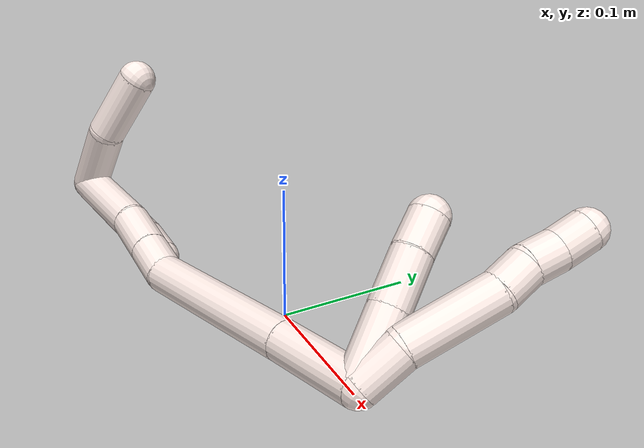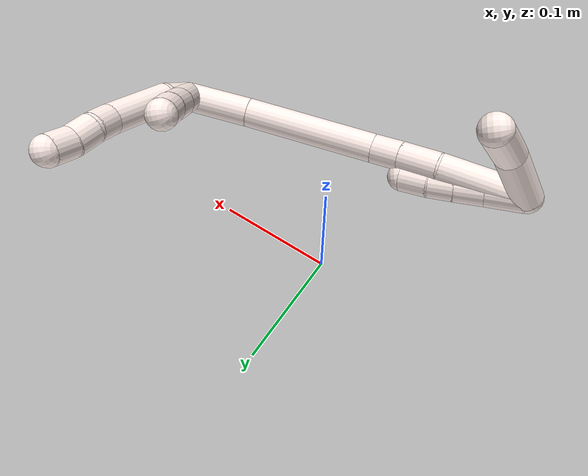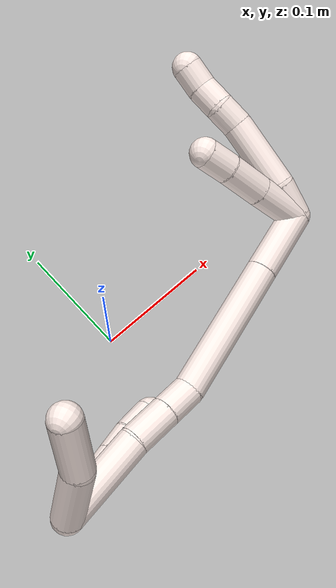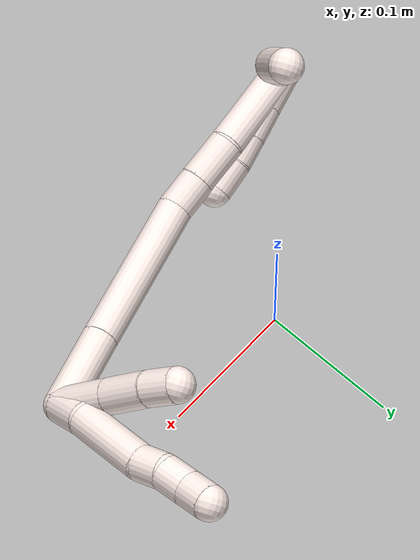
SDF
<sdf version="1.7">
 <world name="default">
  <model name="11">
   <static>0</static>
   <link name="11">
    <collision name="collision-cylinder-e_1_2_8">
     <pose>0.012217 0.007982 -0.002102 -1.8283 0.976625 -1.20693</pose>
     <geometry><cylinder><radius>0.0125</radius><length>0.029489</length></cylinder></geometry>
     <surface>
      <friction><ode><mu>1.16</mu><mu2>1.16</mu2><slip1>0</slip1><slip2>0</slip2></ode></friction>
      <contact><ode><kp>1e+06</kp><kd>1</kd><max_vel>0</max_vel><min_depth>0.001</min_depth></ode></contact>
     </surface>
    </collision>
    <visual name="visual-cylinder-e_1_2_8">
     <pose>0.012217 0.007982 -0.002102 -1.8283 0.976625 -1.20693</pose>
     <geometry><cylinder><radius>0.0125</radius><length>0.029489</length></cylinder></geometry>
     <material><ambient>1 0.933333 0.909804 1</ambient></material>
    </visual>
    <collision name="collision-cylinder-e_2_8_9">
     <pose>0.043602 0.036632 -0.012464 -1.95098 0.710941 -1.00284</pose>
     <geometry><cylinder><radius>0.0125</radius><length>0.058746</length></cylinder></geometry>
     <surface>
      <friction><ode><mu>1.16</mu><mu2>1.16</mu2><slip1>0</slip1><slip2>0</slip2></ode></friction>
      <contact><ode><kp>1e+06</kp><kd>1</kd><max_vel>0</max_vel><min_depth>0.001</min_depth></ode></contact>
     </surface>
    </collision>
    <visual name="visual-cylinder-e_2_8_9">
     <pose>0.043602 0.036632 -0.012464 -1.95098 0.710941 -1.00284</pose>
     <geometry><cylinder><radius>0.0125</radius><length>0.058746</length></cylinder></geometry>
     <material><ambient>1 0.933333 0.909804 1</ambient></material>
    </visual>
    <collision name="collision-cylinder-e_3_9_10">
     <pose>0.069662 0.065095 -0.021282 -1.6424 0.722767 -0.771447</pose>
     <geometry><cylinder><radius>0.0125</radius><length>0.02084</length></cylinder></geometry>
     <surface>
      <friction><ode><mu>1.16</mu><mu2>1.16</mu2><slip1>0</slip1><slip2>0</slip2></ode></friction>
      <contact><ode><kp>1e+06</kp><kd>1</kd><max_vel>0</max_vel><min_depth>0.001</min_depth></ode></contact>
     </surface>
    </collision>
    <visual name="visual-cylinder-e_3_9_10">
     <pose>0.069662 0.065095 -0.021282 -1.6424 0.722767 -0.771447</pose>
     <geometry><cylinder><radius>0.0125</radius><length>0.02084</length></cylinder></geometry>
     <material><ambient>1 0.933333 0.909804 1</ambient></material>
    </visual>
    <collision name="collision-cylinder-e_4_10_11">
     <pose>0.08186 0.081204 -0.024626 -1.894 0.544195 -0.739733</pose>
     <geometry><cylinder><radius>0.0125</radius><length>0.020497</length></cylinder></geometry>
     <surface>
      <friction><ode><mu>1.16</mu><mu2>1.16</mu2><slip1>0</slip1><slip2>0</slip2></ode></friction>
      <contact><ode><kp>1e+06</kp><kd>1</kd><max_vel>0</max_vel><min_depth>0.001</min_depth></ode></contact>
     </surface>
    </collision>
    <visual name="visual-cylinder-e_4_10_11">
     <pose>0.08186 0.081204 -0.024626 -1.894 0.544195 -0.739733</pose>
     <geometry><cylinder><radius>0.0125</radius><length>0.020497</length></cylinder></geometry>
     <material><ambient>1 0.933333 0.909804 1</ambient></material>
    </visual>
    <collision name="collision-cylinder-e_5_11_6">
     <pose>0.094189 0.096552 -0.02976 -1.89314 0.758158 -1.01032</pose>
     <geometry><cylinder><radius>0.0125</radius><length>0.020429</length></cylinder></geometry>
     <surface>
      <friction><ode><mu>1.16</mu><mu2>1.16</mu2><slip1>0</slip1><slip2>0</slip2></ode></friction>
      <contact><ode><kp>1e+06</kp><kd>1</kd><max_vel>0</max_vel><min_depth>0.001</min_depth></ode></contact>
     </surface>
    </collision>
    <visual name="visual-cylinder-e_5_11_6">
     <pose>0.094189 0.096552 -0.02976 -1.89314 0.758158 -1.01032</pose>
     <geometry><cylinder><radius>0.0125</radius><length>0.020429</length></cylinder></geometry>
     <material><ambient>1 0.933333 0.909804 1</ambient></material>
    </visual>
    <collision name="collision-cylinder-e_1_2_12">
     <pose>0.014552 0.013639 0.007471 -1.06966 0.752239 -0.459654</pose>
     <geometry><cylinder><radius>0.0125</radius><length>0.042596</length></cylinder></geometry>
     <surface>
      <friction><ode><mu>1.16</mu><mu2>1.16</mu2><slip1>0</slip1><slip2>0</slip2></ode></friction>
      <contact><ode><kp>1e+06</kp><kd>1</kd><max_vel>0</max_vel><min_depth>0.001</min_depth></ode></contact>
     </surface>
    </collision>
    <visual name="visual-cylinder-e_1_2_12">
     <pose>0.014552 0.013639 0.007471 -1.06966 0.752239 -0.459654</pose>
     <geometry><cylinder><radius>0.0125</radius><length>0.042596</length></cylinder></geometry>
     <material><ambient>1 0.933333 0.909804 1</ambient></material>
    </visual>
    <collision name="collision-cylinder-e_2_12_13">
     <pose>0.040967 0.037954 0.020758 -1.07203 0.773077 -0.47445</pose>
     <geometry><cylinder><radius>0.0125</radius><length>0.033972</length></cylinder></geometry>
     <surface>
      <friction><ode><mu>1.16</mu><mu2>1.16</mu2><slip1>0</slip1><slip2>0</slip2></ode></friction>
      <contact><ode><kp>1e+06</kp><kd>1</kd><max_vel>0</max_vel><min_depth>0.001</min_depth></ode></contact>
     </surface>
    </collision>
    <visual name="visual-cylinder-e_2_12_13">
     <pose>0.040967 0.037954 0.020758 -1.07203 0.773077 -0.47445</pose>
     <geometry><cylinder><radius>0.0125</radius><length>0.033972</length></cylinder></geometry>
     <material><ambient>1 0.933333 0.909804 1</ambient></material>
    </visual>
    <collision name="collision-cylinder-e_3_13_5">
     <pose>0.060514 0.056682 0.030233 -1.14419 0.715407 -0.472396</pose>
     <geometry><cylinder><radius>0.0125</radius><length>0.023432</length></cylinder></geometry>
     <surface>
      <friction><ode><mu>1.16</mu><mu2>1.16</mu2><slip1>0</slip1><slip2>0</slip2></ode></friction>
      <contact><ode><kp>1e+06</kp><kd>1</kd><max_vel>0</max_vel><min_depth>0.001</min_depth></ode></contact>
     </surface>
    </collision>
    <visual name="visual-cylinder-e_3_13_5">
     <pose>0.060514 0.056682 0.030233 -1.14419 0.715407 -0.472396</pose>
     <geometry><cylinder><radius>0.0125</radius><length>0.023432</length></cylinder></geometry>
     <material><ambient>1 0.933333 0.909804 1</ambient></material>
    </visual>
    <collision name="collision-cylinder-e_1_2_14">
     <pose>-0.010527 0.006042 0.02562 -0.231609 -0.380421 0.044786</pose>
     <geometry><cylinder><radius>0.0125</radius><length>0.056699</length></cylinder></geometry>
     <surface>
      <friction><ode><mu>1.16</mu><mu2>1.16</mu2><slip1>0</slip1><slip2>0</slip2></ode></friction>
      <contact><ode><kp>1e+06</kp><kd>1</kd><max_vel>0</max_vel><min_depth>0.001</min_depth></ode></contact>
     </surface>
    </collision>
    <visual name="visual-cylinder-e_1_2_14">
     <pose>-0.010527 0.006042 0.02562 -0.231609 -0.380421 0.044786</pose>
     <geometry><cylinder><radius>0.0125</radius><length>0.056699</length></cylinder></geometry>
     <material><ambient>1 0.933333 0.909804 1</ambient></material>
    </visual>
    <collision name="collision-cylinder-e_2_14_15">
     <pose>-0.043331 0.024595 0.101584 -0.243565 -0.405638 0.050327</pose>
     <geometry><cylinder><radius>0.0125</radius><length>0.112913</length></cylinder></geometry>
     <surface>
      <friction><ode><mu>1.16</mu><mu2>1.16</mu2><slip1>0</slip1><slip2>0</slip2></ode></friction>
      <contact><ode><kp>1e+06</kp><kd>1</kd><max_vel>0</max_vel><min_depth>0.001</min_depth></ode></contact>
     </surface>
    </collision>
    <visual name="visual-cylinder-e_2_14_15">
     <pose>-0.043331 0.024595 0.101584 -0.243565 -0.405638 0.050327</pose>
     <geometry><cylinder><radius>0.0125</radius><length>0.112913</length></cylinder></geometry>
     <material><ambient>1 0.933333 0.909804 1</ambient></material>
    </visual>
    <collision name="collision-cylinder-e_3_15_16">
     <pose>-0.066708 0.041796 0.163992 -0.370828 -0.084681 0.015893</pose>
     <geometry><cylinder><radius>0.0125</radius><length>0.02598</length></cylinder></geometry>
     <surface>
      <friction><ode><mu>1.16</mu><mu2>1.16</mu2><slip1>0</slip1><slip2>0</slip2></ode></friction>
      <contact><ode><kp>1e+06</kp><kd>1</kd><max_vel>0</max_vel><min_depth>0.001</min_depth></ode></contact>
     </surface>
    </collision>
    <visual name="visual-cylinder-e_3_15_16">
     <pose>-0.066708 0.041796 0.163992 -0.370828 -0.084681 0.015893</pose>
     <geometry><cylinder><radius>0.0125</radius><length>0.02598</length></cylinder></geometry>
     <material><ambient>1 0.933333 0.909804 1</ambient></material>
    </visual>
    <collision name="collision-cylinder-e_4_16_17">
     <pose>-0.069511 0.052734 0.191493 -0.384518 -0.102 0.019872</pose>
     <geometry><cylinder><radius>0.0125</radius><length>0.033482</length></cylinder></geometry>
     <surface>
      <friction><ode><mu>1.16</mu><mu2>1.16</mu2><slip1>0</slip1><slip2>0</slip2></ode></friction>
      <contact><ode><kp>1e+06</kp><kd>1</kd><max_vel>0</max_vel><min_depth>0.001</min_depth></ode></contact>
     </surface>
    </collision>
    <visual name="visual-cylinder-e_4_16_17">
     <pose>-0.069511 0.052734 0.191493 -0.384518 -0.102 0.019872</pose>
     <geometry><cylinder><radius>0.0125</radius><length>0.033482</length></cylinder></geometry>
     <material><ambient>1 0.933333 0.909804 1</ambient></material>
    </visual>
    <collision name="collision-cylinder-e_5_17_1">
     <pose>-0.080773 0.07109 0.238863 -0.362455 -0.272891 0.050306</pose>
     <geometry><cylinder><radius>0.0125</radius><length>0.070925</length></cylinder></geometry>
     <surface>
      <friction><ode><mu>1.16</mu><mu2>1.16</mu2><slip1>0</slip1><slip2>0</slip2></ode></friction>
      <contact><ode><kp>1e+06</kp><kd>1</kd><max_vel>0</max_vel><min_depth>0.001</min_depth></ode></contact>
     </surface>
    </collision>
    <visual name="visual-cylinder-e_5_17_1">
     <pose>-0.080773 0.07109 0.238863 -0.362455 -0.272891 0.050306</pose>
     <geometry><cylinder><radius>0.0125</radius><length>0.070925</length></cylinder></geometry>
     <material><ambient>1 0.933333 0.909804 1</ambient></material>
    </visual>
    <collision name="collision-cylinder-e_1_1_18">
     <pose>-0.064216 0.07742 0.267606 2.07504 1.32325 1.84428</pose>
     <geometry><cylinder><radius>0.0125</radius><length>0.053873</length></cylinder></geometry>
     <surface>
      <friction><ode><mu>1.16</mu><mu2>1.16</mu2><slip1>0</slip1><slip2>0</slip2></ode></friction>
      <contact><ode><kp>1e+06</kp><kd>1</kd><max_vel>0</max_vel><min_depth>0.001</min_depth></ode></contact>
     </surface>
    </collision>
    <visual name="visual-cylinder-e_1_1_18">
     <pose>-0.064216 0.07742 0.267606 2.07504 1.32325 1.84428</pose>
     <geometry><cylinder><radius>0.0125</radius><length>0.053873</length></cylinder></geometry>
     <material><ambient>1 0.933333 0.909804 1</ambient></material>
    </visual>
    <collision name="collision-cylinder-e_2_18_4">
     <pose>-0.01526 0.07423 0.262536 -2.19894 1.43158 -2.08142</pose>
     <geometry><cylinder><radius>0.0125</radius><length>0.046127</length></cylinder></geometry>
     <surface>
      <friction><ode><mu>1.16</mu><mu2>1.16</mu2><slip1>0</slip1><slip2>0</slip2></ode></friction>
      <contact><ode><kp>1e+06</kp><kd>1</kd><max_vel>0</max_vel><min_depth>0.001</min_depth></ode></contact>
     </surface>
    </collision>
    <visual name="visual-cylinder-e_2_18_4">
     <pose>-0.01526 0.07423 0.262536 -2.19894 1.43158 -2.08142</pose>
     <geometry><cylinder><radius>0.0125</radius><length>0.046127</length></cylinder></geometry>
     <material><ambient>1 0.933333 0.909804 1</ambient></material>
    </visual>
    <collision name="collision-cylinder-e_1_1_19">
     <pose>-0.088172 0.079962 0.255749 2.92972 0.139415 1.162</pose>
     <geometry><cylinder><radius>0.0125</radius><length>0.031082</length></cylinder></geometry>
     <surface>
      <friction><ode><mu>1.16</mu><mu2>1.16</mu2><slip1>0</slip1><slip2>0</slip2></ode></friction>
      <contact><ode><kp>1e+06</kp><kd>1</kd><max_vel>0</max_vel><min_depth>0.001</min_depth></ode></contact>
     </surface>
    </collision>
    <visual name="visual-cylinder-e_1_1_19">
     <pose>-0.088172 0.079962 0.255749 2.92972 0.139415 1.162</pose>
     <geometry><cylinder><radius>0.0125</radius><length>0.031082</length></cylinder></geometry>
     <material><ambient>1 0.933333 0.909804 1</ambient></material>
    </visual>
    <collision name="collision-cylinder-e_2_19_20">
     <pose>-0.084331 0.074369 0.228894 2.94466 0.138675 1.22548</pose>
     <geometry><cylinder><radius>0.0125</radius><length>0.024315</length></cylinder></geometry>
     <surface>
      <friction><ode><mu>1.16</mu><mu2>1.16</mu2><slip1>0</slip1><slip2>0</slip2></ode></friction>
      <contact><ode><kp>1e+06</kp><kd>1</kd><max_vel>0</max_vel><min_depth>0.001</min_depth></ode></contact>
     </surface>
    </collision>
    <visual name="visual-cylinder-e_2_19_20">
     <pose>-0.084331 0.074369 0.228894 2.94466 0.138675 1.22548</pose>
     <geometry><cylinder><radius>0.0125</radius><length>0.024315</length></cylinder></geometry>
     <material><ambient>1 0.933333 0.909804 1</ambient></material>
    </visual>
    <collision name="collision-cylinder-e_3_20_21">
     <pose>-0.081108 0.069843 0.206974 2.93023 0.148037 1.22018</pose>
     <geometry><cylinder><radius>0.0125</radius><length>0.020915</length></cylinder></geometry>
     <surface>
      <friction><ode><mu>1.16</mu><mu2>1.16</mu2><slip1>0</slip1><slip2>0</slip2></ode></friction>
      <contact><ode><kp>1e+06</kp><kd>1</kd><max_vel>0</max_vel><min_depth>0.001</min_depth></ode></contact>
     </surface>
    </collision>
    <visual name="visual-cylinder-e_3_20_21">
     <pose>-0.081108 0.069843 0.206974 2.93023 0.148037 1.22018</pose>
     <geometry><cylinder><radius>0.0125</radius><length>0.020915</length></cylinder></geometry>
     <material><ambient>1 0.933333 0.909804 1</ambient></material>
    </visual>
    <collision name="collision-cylinder-e_4_21_3">
     <pose>-0.078527 0.064019 0.185643 2.82662 0.087814 0.539839</pose>
     <geometry><cylinder><radius>0.0125</radius><length>0.023688</length></cylinder></geometry>
     <surface>
      <friction><ode><mu>1.16</mu><mu2>1.16</mu2><slip1>0</slip1><slip2>0</slip2></ode></friction>
      <contact><ode><kp>1e+06</kp><kd>1</kd><max_vel>0</max_vel><min_depth>0.001</min_depth></ode></contact>
     </surface>
    </collision>
    <visual name="visual-cylinder-e_4_21_3">
     <pose>-0.078527 0.064019 0.185643 2.82662 0.087814 0.539839</pose>
     <geometry><cylinder><radius>0.0125</radius><length>0.023688</length></cylinder></geometry>
     <material><ambient>1 0.933333 0.909804 1</ambient></material>
    </visual>
    <collision name="collision-sphere-3">
     <pose>-0.077488 0.060363 0.174425 0 -0 0</pose>
     <geometry><sphere><radius>0.0125</radius></sphere></geometry>
     <surface>
      <friction><ode><mu>1.16</mu><mu2>1.16</mu2><slip1>0</slip1><slip2>0</slip2></ode></friction>
      <contact><ode><kp>1e+06</kp><kd>1</kd><max_vel>0</max_vel><min_depth>0.001</min_depth></ode></contact>
     </surface>
    </collision>
    <visual name="visual-sphere-3">
     <pose>-0.077488 0.060363 0.174425 0 -0 0</pose>
     <geometry><sphere><radius>0.0125</radius></sphere></geometry>
     <material><ambient>1 0.933333 0.909804 1</ambient></material>
    </visual>
    <collision name="collision-sphere-21">
     <pose>-0.079566 0.067674 0.196861 0 -0 0</pose>
     <geometry><sphere><radius>0.0125</radius></sphere></geometry>
     <surface>
      <friction><ode><mu>1.16</mu><mu2>1.16</mu2><slip1>0</slip1><slip2>0</slip2></ode></friction>
      <contact><ode><kp>1e+06</kp><kd>1</kd><max_vel>0</max_vel><min_depth>0.001</min_depth></ode></contact>
     </surface>
    </collision>
    <visual name="visual-sphere-21">
     <pose>-0.079566 0.067674 0.196861 0 -0 0</pose>
     <geometry><sphere><radius>0.0125</radius></sphere></geometry>
     <material><ambient>1 0.933333 0.909804 1</ambient></material>
    </visual>
    <collision name="collision-sphere-20">
     <pose>-0.082651 0.072013 0.217087 0 -0 0</pose>
     <geometry><sphere><radius>0.0125</radius></sphere></geometry>
     <surface>
      <friction><ode><mu>1.16</mu><mu2>1.16</mu2><slip1>0</slip1><slip2>0</slip2></ode></friction>
      <contact><ode><kp>1e+06</kp><kd>1</kd><max_vel>0</max_vel><min_depth>0.001</min_depth></ode></contact>
     </surface>
    </collision>
    <visual name="visual-sphere-20">
     <pose>-0.082651 0.072013 0.217087 0 -0 0</pose>
     <geometry><sphere><radius>0.0125</radius></sphere></geometry>
     <material><ambient>1 0.933333 0.909804 1</ambient></material>
    </visual>
    <collision name="collision-sphere-19">
     <pose>-0.086012 0.076725 0.240702 0 -0 0</pose>
     <geometry><sphere><radius>0.0125</radius></sphere></geometry>
     <surface>
      <friction><ode><mu>1.16</mu><mu2>1.16</mu2><slip1>0</slip1><slip2>0</slip2></ode></friction>
      <contact><ode><kp>1e+06</kp><kd>1</kd><max_vel>0</max_vel><min_depth>0.001</min_depth></ode></contact>
     </surface>
    </collision>
    <visual name="visual-sphere-19">
     <pose>-0.086012 0.076725 0.240702 0 -0 0</pose>
     <geometry><sphere><radius>0.0125</radius></sphere></geometry>
     <material><ambient>1 0.933333 0.909804 1</ambient></material>
    </visual>
    <collision name="collision-sphere-6">
     <pose>0.101212 0.103587 -0.03211 0 -0 0</pose>
     <geometry><sphere><radius>0.0125</radius></sphere></geometry>
     <surface>
      <friction><ode><mu>1.16</mu><mu2>1.16</mu2><slip1>0</slip1><slip2>0</slip2></ode></friction>
      <contact><ode><kp>1e+06</kp><kd>1</kd><max_vel>0</max_vel><min_depth>0.001</min_depth></ode></contact>
     </surface>
    </collision>
    <visual name="visual-sphere-6">
     <pose>0.101212 0.103587 -0.03211 0 -0 0</pose>
     <geometry><sphere><radius>0.0125</radius></sphere></geometry>
     <material><ambient>1 0.933333 0.909804 1</ambient></material>
    </visual>
    <collision name="collision-sphere-11">
     <pose>0.087166 0.089518 -0.027411 0 -0 0</pose>
     <geometry><sphere><radius>0.0125</radius></sphere></geometry>
     <surface>
      <friction><ode><mu>1.16</mu><mu2>1.16</mu2><slip1>0</slip1><slip2>0</slip2></ode></friction>
      <contact><ode><kp>1e+06</kp><kd>1</kd><max_vel>0</max_vel><min_depth>0.001</min_depth></ode></contact>
     </surface>
    </collision>
    <visual name="visual-sphere-11">
     <pose>0.087166 0.089518 -0.027411 0 -0 0</pose>
     <geometry><sphere><radius>0.0125</radius></sphere></geometry>
     <material><ambient>1 0.933333 0.909804 1</ambient></material>
    </visual>
    <collision name="collision-sphere-10">
     <pose>0.076554 0.07289 -0.021841 0 -0 0</pose>
     <geometry><sphere><radius>0.0125</radius></sphere></geometry>
     <surface>
      <friction><ode><mu>1.16</mu><mu2>1.16</mu2><slip1>0</slip1><slip2>0</slip2></ode></friction>
      <contact><ode><kp>1e+06</kp><kd>1</kd><max_vel>0</max_vel><min_depth>0.001</min_depth></ode></contact>
     </surface>
    </collision>
    <visual name="visual-sphere-10">
     <pose>0.076554 0.07289 -0.021841 0 -0 0</pose>
     <geometry><sphere><radius>0.0125</radius></sphere></geometry>
     <material><ambient>1 0.933333 0.909804 1</ambient></material>
    </visual>
    <collision name="collision-sphere-9">
     <pose>0.062769 0.0573 -0.020723 0 -0 0</pose>
     <geometry><sphere><radius>0.0125</radius></sphere></geometry>
     <surface>
      <friction><ode><mu>1.16</mu><mu2>1.16</mu2><slip1>0</slip1><slip2>0</slip2></ode></friction>
      <contact><ode><kp>1e+06</kp><kd>1</kd><max_vel>0</max_vel><min_depth>0.001</min_depth></ode></contact>
     </surface>
    </collision>
    <visual name="visual-sphere-9">
     <pose>0.062769 0.0573 -0.020723 0 -0 0</pose>
     <geometry><sphere><radius>0.0125</radius></sphere></geometry>
     <material><ambient>1 0.933333 0.909804 1</ambient></material>
    </visual>
    <collision name="collision-sphere-2">
     <geometry><sphere><radius>0.0125</radius></sphere></geometry>
     <surface>
      <friction><ode><mu>1.16</mu><mu2>1.16</mu2><slip1>0</slip1><slip2>0</slip2></ode></friction>
      <contact><ode><kp>1e+06</kp><kd>1</kd><max_vel>0</max_vel><min_depth>0.001</min_depth></ode></contact>
     </surface>
    </collision>
    <visual name="visual-sphere-2">
     <geometry><sphere><radius>0.0125</radius></sphere></geometry>
     <material><ambient>1 0.933333 0.909804 1</ambient></material>
    </visual>
    <collision name="collision-sphere-8">
     <pose>0.024435 0.015964 -0.004204 0 -0 0</pose>
     <geometry><sphere><radius>0.0125</radius></sphere></geometry>
     <surface>
      <friction><ode><mu>1.16</mu><mu2>1.16</mu2><slip1>0</slip1><slip2>0</slip2></ode></friction>
      <contact><ode><kp>1e+06</kp><kd>1</kd><max_vel>0</max_vel><min_depth>0.001</min_depth></ode></contact>
     </surface>
    </collision>
    <visual name="visual-sphere-8">
     <pose>0.024435 0.015964 -0.004204 0 -0 0</pose>
     <geometry><sphere><radius>0.0125</radius></sphere></geometry>
     <material><ambient>1 0.933333 0.909804 1</ambient></material>
    </visual>
    <collision name="collision-sphere-12">
     <pose>0.029105 0.027278 0.014942 0 -0 0</pose>
     <geometry><sphere><radius>0.0125</radius></sphere></geometry>
     <surface>
      <friction><ode><mu>1.16</mu><mu2>1.16</mu2><slip1>0</slip1><slip2>0</slip2></ode></friction>
      <contact><ode><kp>1e+06</kp><kd>1</kd><max_vel>0</max_vel><min_depth>0.001</min_depth></ode></contact>
     </surface>
    </collision>
    <visual name="visual-sphere-12">
     <pose>0.029105 0.027278 0.014942 0 -0 0</pose>
     <geometry><sphere><radius>0.0125</radius></sphere></geometry>
     <material><ambient>1 0.933333 0.909804 1</ambient></material>
    </visual>
    <collision name="collision-sphere-13">
     <pose>0.052829 0.048631 0.026573 0 -0 0</pose>
     <geometry><sphere><radius>0.0125</radius></sphere></geometry>
     <surface>
      <friction><ode><mu>1.16</mu><mu2>1.16</mu2><slip1>0</slip1><slip2>0</slip2></ode></friction>
      <contact><ode><kp>1e+06</kp><kd>1</kd><max_vel>0</max_vel><min_depth>0.001</min_depth></ode></contact>
     </surface>
    </collision>
    <visual name="visual-sphere-13">
     <pose>0.052829 0.048631 0.026573 0 -0 0</pose>
     <geometry><sphere><radius>0.0125</radius></sphere></geometry>
     <material><ambient>1 0.933333 0.909804 1</ambient></material>
    </visual>
    <collision name="collision-sphere-5">
     <pose>0.068198 0.064733 0.033892 0 -0 0</pose>
     <geometry><sphere><radius>0.0125</radius></sphere></geometry>
     <surface>
      <friction><ode><mu>1.16</mu><mu2>1.16</mu2><slip1>0</slip1><slip2>0</slip2></ode></friction>
      <contact><ode><kp>1e+06</kp><kd>1</kd><max_vel>0</max_vel><min_depth>0.001</min_depth></ode></contact>
     </surface>
    </collision>
    <visual name="visual-sphere-5">
     <pose>0.068198 0.064733 0.033892 0 -0 0</pose>
     <geometry><sphere><radius>0.0125</radius></sphere></geometry>
     <material><ambient>1 0.933333 0.909804 1</ambient></material>
    </visual>
    <collision name="collision-sphere-14">
     <pose>-0.021053 0.012084 0.05124 0 -0 0</pose>
     <geometry><sphere><radius>0.0125</radius></sphere></geometry>
     <surface>
      <friction><ode><mu>1.16</mu><mu2>1.16</mu2><slip1>0</slip1><slip2>0</slip2></ode></friction>
      <contact><ode><kp>1e+06</kp><kd>1</kd><max_vel>0</max_vel><min_depth>0.001</min_depth></ode></contact>
     </surface>
    </collision>
    <visual name="visual-sphere-14">
     <pose>-0.021053 0.012084 0.05124 0 -0 0</pose>
     <geometry><sphere><radius>0.0125</radius></sphere></geometry>
     <material><ambient>1 0.933333 0.909804 1</ambient></material>
    </visual>
    <collision name="collision-sphere-15">
     <pose>-0.065609 0.037105 0.151928 0 -0 0</pose>
     <geometry><sphere><radius>0.0125</radius></sphere></geometry>
     <surface>
      <friction><ode><mu>1.16</mu><mu2>1.16</mu2><slip1>0</slip1><slip2>0</slip2></ode></friction>
      <contact><ode><kp>1e+06</kp><kd>1</kd><max_vel>0</max_vel><min_depth>0.001</min_depth></ode></contact>
     </surface>
    </collision>
    <visual name="visual-sphere-15">
     <pose>-0.065609 0.037105 0.151928 0 -0 0</pose>
     <geometry><sphere><radius>0.0125</radius></sphere></geometry>
     <material><ambient>1 0.933333 0.909804 1</ambient></material>
    </visual>
    <collision name="collision-sphere-16">
     <pose>-0.067806 0.046487 0.176055 0 -0 0</pose>
     <geometry><sphere><radius>0.0125</radius></sphere></geometry>
     <surface>
      <friction><ode><mu>1.16</mu><mu2>1.16</mu2><slip1>0</slip1><slip2>0</slip2></ode></friction>
      <contact><ode><kp>1e+06</kp><kd>1</kd><max_vel>0</max_vel><min_depth>0.001</min_depth></ode></contact>
     </surface>
    </collision>
    <visual name="visual-sphere-16">
     <pose>-0.067806 0.046487 0.176055 0 -0 0</pose>
     <geometry><sphere><radius>0.0125</radius></sphere></geometry>
     <material><ambient>1 0.933333 0.909804 1</ambient></material>
    </visual>
    <collision name="collision-sphere-17">
     <pose>-0.071216 0.058981 0.206932 0 -0 0</pose>
     <geometry><sphere><radius>0.0125</radius></sphere></geometry>
     <surface>
      <friction><ode><mu>1.16</mu><mu2>1.16</mu2><slip1>0</slip1><slip2>0</slip2></ode></friction>
      <contact><ode><kp>1e+06</kp><kd>1</kd><max_vel>0</max_vel><min_depth>0.001</min_depth></ode></contact>
     </surface>
    </collision>
    <visual name="visual-sphere-17">
     <pose>-0.071216 0.058981 0.206932 0 -0 0</pose>
     <geometry><sphere><radius>0.0125</radius></sphere></geometry>
     <material><ambient>1 0.933333 0.909804 1</ambient></material>
    </visual>
    <collision name="collision-sphere-1">
     <pose>-0.090331 0.083198 0.270795 0 -0 0</pose>
     <geometry><sphere><radius>0.0125</radius></sphere></geometry>
     <surface>
      <friction><ode><mu>1.16</mu><mu2>1.16</mu2><slip1>0</slip1><slip2>0</slip2></ode></friction>
      <contact><ode><kp>1e+06</kp><kd>1</kd><max_vel>0</max_vel><min_depth>0.001</min_depth></ode></contact>
     </surface>
    </collision>
    <visual name="visual-sphere-1">
     <pose>-0.090331 0.083198 0.270795 0 -0 0</pose>
     <geometry><sphere><radius>0.0125</radius></sphere></geometry>
     <material><ambient>1 0.933333 0.909804 1</ambient></material>
    </visual>
    <collision name="collision-sphere-18">
     <pose>-0.0381 0.071641 0.264417 0 -0 0</pose>
     <geometry><sphere><radius>0.0125</radius></sphere></geometry>
     <surface>
      <friction><ode><mu>1.16</mu><mu2>1.16</mu2><slip1>0</slip1><slip2>0</slip2></ode></friction>
      <contact><ode><kp>1e+06</kp><kd>1</kd><max_vel>0</max_vel><min_depth>0.001</min_depth></ode></contact>
     </surface>
    </collision>
    <visual name="visual-sphere-18">
     <pose>-0.0381 0.071641 0.264417 0 -0 0</pose>
     <geometry><sphere><radius>0.0125</radius></sphere></geometry>
     <material><ambient>1 0.933333 0.909804 1</ambient></material>
    </visual>
    <collision name="collision-sphere-4">
     <pose>0.00758 0.07682 0.260655 0 -0 0</pose>
     <geometry><sphere><radius>0.0125</radius></sphere></geometry>
     <surface>
      <friction><ode><mu>1.16</mu><mu2>1.16</mu2><slip1>0</slip1><slip2>0</slip2></ode></friction>
      <contact><ode><kp>1e+06</kp><kd>1</kd><max_vel>0</max_vel><min_depth>0.001</min_depth></ode></contact>
     </surface>
    </collision>
    <visual name="visual-sphere-4">
     <pose>0.00758 0.07682 0.260655 0 -0 0</pose>
     <geometry><sphere><radius>0.0125</radius></sphere></geometry>
     <material><ambient>1 0.933333 0.909804 1</ambient></material>
    </visual>
    <inertial>
     <pose>-0.021846 0.048611 0.118248 0 -0 0</pose>
     <mass>0.75</mass>
     <inertia>
      <ixx>0.000203</ixx>
      <ixy>0</ixy>
      <ixz>0</ixz>
      <iyy>0.000229</iyy>
      <iyz>0</iyz>
      <izz>-4.5e-05</izz>
     </inertia>
    </inertial>
   </link>
   <pose>0.169355 -0.040633 0.071911 -0.481437 -1.12746 0.939869</pose>
  </model>
 </world>
</sdf>
